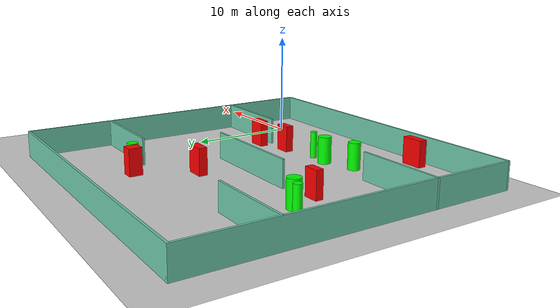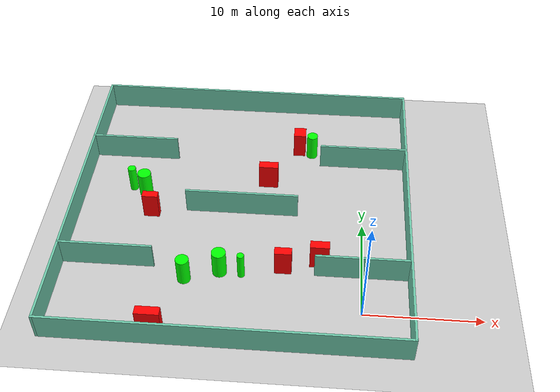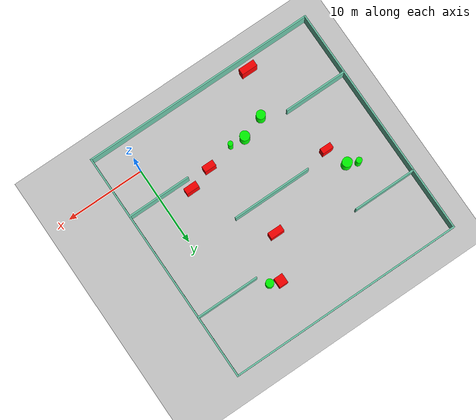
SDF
<sdf version="1.7">
 <world name="default">
  <light name="sun" type="directional">
   <pose>0 0 10 0 -0 0</pose>
   <diffuse>0.8 0.8 0.8 1</diffuse>
   <specular>0.2 0.2 0.2 1</specular>
   <attenuation>
    <range>1000</range>
    <constant>0.9</constant>
    <linear>0.01</linear>
    <quadratic>0.001</quadratic>
   </attenuation>
   <direction>-0.5 0.1 -0.9</direction>
   <spot><inner_angle>0</inner_angle><outer_angle>0</outer_angle><falloff>0</falloff></spot>
  </light>
  <model name="ground_plane">
   <static>1</static>
   <link name="link">
    <collision name="collision">
     <geometry><plane><normal>0 0 1</normal><size>100 100</size></plane></geometry>
     <surface>
      <contact><collide_bitmask>65535</collide_bitmask></contact>
      <friction><ode><mu>100</mu><mu2>50</mu2></ode></friction>
     </surface>
    </collision>
    <visual name="visual">
     <cast_shadows>0</cast_shadows>
     <geometry><plane><normal>0 0 1</normal><size>100 100</size></plane></geometry>
     <material>
      <script><uri>file://media/materials/scripts/gazebo.material</uri><name>Gazebo/Grey</name></script>
     </material>
    </visual>
   </link>
  </model>
  <gravity>0 0 -9.8</gravity>
  <magnetic_field>6e-06 2.3e-05 -4.2e-05</magnetic_field>
  <atmosphere type="adiabatic"/>
  <physics type="ode">
   <max_step_size>0.001</max_step_size>
   <real_time_factor>1</real_time_factor>
   <real_time_update_rate>1000</real_time_update_rate>
  </physics>
  <scene><ambient>0.4 0.4 0.4 1</ambient><background>0.7 0.7 0.7 1</background><shadows>1</shadows></scene>
  <spherical_coordinates>
   <surface_model>EARTH_WGS84</surface_model>
   <latitude_deg>0</latitude_deg>
   <longitude_deg>0</longitude_deg>
   <elevation>0</elevation>
   <heading_deg>0</heading_deg>
  </spherical_coordinates>
  <model name="my_base_walls">
   <link name="Wall_10">
    <collision name="Wall_10_Collision">
     <geometry><box><size>8.2 0.2 2.5</size></box></geometry>
     <pose>0 0 1.25 0 -0 0</pose>
    </collision>
    <visual name="Wall_10_Visual">
     <pose>0 0 1.25 0 -0 0</pose>
     <geometry><box><size>8.2 0.2 2.5</size></box></geometry>
     <material>
      <script><uri>file://media/materials/scripts/gazebo.material</uri><name>Gazebo/Grey</name></script>
      <ambient>0.435294 0.796078 0.67451 1</ambient>
     </material>
     <meta><layer>0</layer></meta>
    </visual>
    <pose>-11 -7 0 0 -0 0</pose>
   </link>
   <link name="Wall_12">
    <collision name="Wall_12_Collision">
     <geometry><box><size>8.2 0.2 2.5</size></box></geometry>
     <pose>0 0 1.25 0 -0 0</pose>
    </collision>
    <visual name="Wall_12_Visual">
     <pose>0 0 1.25 0 -0 0</pose>
     <geometry><box><size>8.2 0.2 2.5</size></box></geometry>
     <material>
      <script><uri>file://media/materials/scripts/gazebo.material</uri><name>Gazebo/Grey</name></script>
      <ambient>0.435294 0.796078 0.67451 1</ambient>
     </material>
     <meta><layer>0</layer></meta>
    </visual>
    <pose>-11 7 0 0 -0 0</pose>
   </link>
   <link name="Wall_14">
    <collision name="Wall_14_Collision">
     <geometry><box><size>8.2 0.2 2.5</size></box></geometry>
     <pose>0 0 1.25 0 -0 0</pose>
    </collision>
    <visual name="Wall_14_Visual">
     <pose>0 0 1.25 0 -0 0</pose>
     <geometry><box><size>8.2 0.2 2.5</size></box></geometry>
     <material>
      <script><uri>file://media/materials/scripts/gazebo.material</uri><name>Gazebo/Grey</name></script>
      <ambient>0.435294 0.796078 0.67451 1</ambient>
     </material>
     <meta><layer>0</layer></meta>
    </visual>
    <pose>11 7 0 0 -0 3.14159</pose>
   </link>
   <link name="Wall_16">
    <collision name="Wall_16_Collision">
     <geometry><box><size>10.2 0.2 2.5</size></box></geometry>
     <pose>0 0 1.25 0 -0 0</pose>
    </collision>
    <visual name="Wall_16_Visual">
     <pose>0 0 1.25 0 -0 0</pose>
     <geometry><box><size>10.2 0.2 2.5</size></box></geometry>
     <material>
      <script><uri>file://media/materials/scripts/gazebo.material</uri><name>Gazebo/Grey</name></script>
      <ambient>0.435294 0.796078 0.67451 1</ambient>
     </material>
     <meta><layer>0</layer></meta>
    </visual>
    <pose>0 0 0 0 -0 3.14159</pose>
   </link>
   <link name="Wall_2">
    <collision name="Wall_2_Collision">
     <geometry><box><size>30.2 0.2 2.5</size></box></geometry>
     <pose>0 0 1.25 0 -0 0</pose>
    </collision>
    <visual name="Wall_2_Visual">
     <pose>0 0 1.25 0 -0 0</pose>
     <geometry><box><size>30.2 0.2 2.5</size></box></geometry>
     <material>
      <script><uri>file://media/materials/scripts/gazebo.material</uri><name>Gazebo/Grey</name></script>
      <ambient>0.435294 0.796078 0.67451 1</ambient>
     </material>
     <meta><layer>0</layer></meta>
    </visual>
    <pose>0 -15 0 0 -0 3.14159</pose>
   </link>
   <link name="Wall_3">
    <collision name="Wall_3_Collision">
     <geometry><box><size>30.2 0.2 2.5</size></box></geometry>
     <pose>0 0 1.25 0 -0 0</pose>
    </collision>
    <visual name="Wall_3_Visual">
     <pose>0 0 1.25 0 -0 0</pose>
     <geometry><box><size>30.2 0.2 2.5</size></box></geometry>
     <material>
      <script><uri>file://media/materials/scripts/gazebo.material</uri><name>Gazebo/Grey</name></script>
      <ambient>0.435294 0.796078 0.67451 1</ambient>
     </material>
     <meta><layer>0</layer></meta>
    </visual>
    <pose>-15 0 0 0 -0 1.5708</pose>
   </link>
   <link name="Wall_4">
    <collision name="Wall_4_Collision">
     <geometry><box><size>30.2 0.2 2.5</size></box></geometry>
     <pose>0 0 1.25 0 -0 0</pose>
    </collision>
    <visual name="Wall_4_Visual">
     <pose>0 0 1.25 0 -0 0</pose>
     <geometry><box><size>30.2 0.2 2.5</size></box></geometry>
     <material>
      <script><uri>file://media/materials/scripts/gazebo.material</uri><name>Gazebo/Grey</name></script>
      <ambient>0.435294 0.796078 0.67451 1</ambient>
     </material>
     <meta><layer>0</layer></meta>
    </visual>
    <pose>0 15 0 0 -0 0</pose>
   </link>
   <link name="Wall_6">
    <collision name="Wall_6_Collision">
     <geometry><box><size>30.2 0.2 2.5</size></box></geometry>
     <pose>0 0 1.25 0 -0 0</pose>
    </collision>
    <visual name="Wall_6_Visual">
     <pose>0 0 1.25 0 -0 0</pose>
     <geometry><box><size>30.2 0.2 2.5</size></box></geometry>
     <material>
      <script><uri>file://media/materials/scripts/gazebo.material</uri><name>Gazebo/Grey</name></script>
      <ambient>0.435294 0.796078 0.67451 1</ambient>
     </material>
     <meta><layer>0</layer></meta>
    </visual>
    <pose>15 0 0 0 -0 1.5708</pose>
   </link>
   <link name="Wall_8">
    <collision name="Wall_8_Collision">
     <geometry><box><size>8.2 0.2 2.5</size></box></geometry>
     <pose>0 0 1.25 0 -0 0</pose>
    </collision>
    <visual name="Wall_8_Visual">
     <pose>0 0 1.25 0 -0 0</pose>
     <geometry><box><size>8.2 0.2 2.5</size></box></geometry>
     <material>
      <script><uri>file://media/materials/scripts/gazebo.material</uri><name>Gazebo/Grey</name></script>
      <ambient>0.435294 0.796078 0.67451 1</ambient>
     </material>
     <meta><layer>0</layer></meta>
    </visual>
    <pose>11 -7 0 0 -0 3.14159</pose>
   </link>
   <static>1</static>
   <pose>-11 11 0 0 -0 0</pose>
  </model>
  <model name="cylinder1">
   <static>1</static>
   <link name="link">
    <inertial>
     <mass>1</mass>
     <inertia><ixx>0.5</ixx><ixy>0</ixy><ixz>0</ixz><iyy>0.5</iyy><iyz>0</iyz><izz>1</izz></inertia>
    </inertial>
    <collision name="collision">
     <geometry><cylinder><radius>0.6181205610210545</radius><length>2.5</length></cylinder></geometry>
    </collision>
    <visual name="visual">
     <geometry><cylinder><radius>0.6181205610210545</radius><length>2.5</length></cylinder></geometry>
     <material>
      <ambient>0 1 0 1</ambient>
      <diffuse>0 1 0 1</diffuse>
      <specular>0.1 0.1 0.1 1</specular>
      <emissive>0 0 0 0</emissive>
     </material>
    </visual>
   </link>
   <pose>-12.188213053792078 3.710607601195469 1.25 0 0 0</pose>
  </model>
  <model name="cylinder2">
   <static>1</static>
   <link name="link">
    <inertial>
     <mass>1</mass>
     <inertia><ixx>0.5</ixx><ixy>0</ixy><ixz>0</ixz><iyy>0.5</iyy><iyz>0</iyz><izz>1</izz></inertia>
    </inertial>
    <collision name="collision">
     <geometry><cylinder><radius>0.3737149077700963</radius><length>2.5</length></cylinder></geometry>
    </collision>
    <visual name="visual">
     <geometry><cylinder><radius>0.3737149077700963</radius><length>2.5</length></cylinder></geometry>
     <material>
      <ambient>0 1 0 1</ambient>
      <diffuse>0 1 0 1</diffuse>
      <specular>0.1 0.1 0.1 1</specular>
      <emissive>0 0 0 0</emissive>
     </material>
    </visual>
   </link>
   <pose>-21.47896339627836 13.519414535897123 1.25 0 0 0</pose>
  </model>
  <model name="cylinder3">
   <static>1</static>
   <link name="link">
    <inertial>
     <mass>1</mass>
     <inertia><ixx>0.5</ixx><ixy>0</ixy><ixz>0</ixz><iyy>0.5</iyy><iyz>0</iyz><izz>1</izz></inertia>
    </inertial>
    <collision name="collision">
     <geometry><cylinder><radius>0.5054031639291345</radius><length>2.5</length></cylinder></geometry>
    </collision>
    <visual name="visual">
     <geometry><cylinder><radius>0.5054031639291345</radius><length>2.5</length></cylinder></geometry>
     <material>
      <ambient>0 1 0 1</ambient>
      <diffuse>0 1 0 1</diffuse>
      <specular>0.1 0.1 0.1 1</specular>
      <emissive>0 0 0 0</emissive>
     </material>
    </visual>
   </link>
   <pose>-4.943305685416485 19.383172539061928 1.25 0 0 0</pose>
  </model>
  <model name="cylinder4">
   <static>1</static>
   <link name="link">
    <inertial>
     <mass>1</mass>
     <inertia><ixx>0.5</ixx><ixy>0</ixy><ixz>0</ixz><iyy>0.5</iyy><iyz>0</iyz><izz>1</izz></inertia>
    </inertial>
    <collision name="collision">
     <geometry><cylinder><radius>0.3097689086669468</radius><length>2.5</length></cylinder></geometry>
    </collision>
    <visual name="visual">
     <geometry><cylinder><radius>0.3097689086669468</radius><length>2.5</length></cylinder></geometry>
     <material>
      <ambient>0 1 0 1</ambient>
      <diffuse>0 1 0 1</diffuse>
      <specular>0.1 0.1 0.1 1</specular>
      <emissive>0 0 0 0</emissive>
     </material>
    </visual>
   </link>
   <pose>-10.316726386732455 3.5234515408037623 1.25 0 0 0</pose>
  </model>
  <model name="cylinder5">
   <static>1</static>
   <link name="link">
    <inertial>
     <mass>1</mass>
     <inertia><ixx>0.5</ixx><ixy>0</ixy><ixz>0</ixz><iyy>0.5</iyy><iyz>0</iyz><izz>1</izz></inertia>
    </inertial>
    <collision name="collision">
     <geometry><cylinder><radius>0.5724118530019877</radius><length>2.5</length></cylinder></geometry>
    </collision>
    <visual name="visual">
     <geometry><cylinder><radius>0.5724118530019877</radius><length>2.5</length></cylinder></geometry>
     <material>
      <ambient>0 1 0 1</ambient>
      <diffuse>0 1 0 1</diffuse>
      <specular>0.1 0.1 0.1 1</specular>
      <emissive>0 0 0 0</emissive>
     </material>
    </visual>
   </link>
   <pose>-15.129825976541552 2.717689951962967 1.25 0 0 0</pose>
  </model>
  <model name="cylinder6">
   <static>1</static>
   <link name="link">
    <inertial>
     <mass>1</mass>
     <inertia><ixx>0.5</ixx><ixy>0</ixy><ixz>0</ixz><iyy>0.5</iyy><iyz>0</iyz><izz>1</izz></inertia>
    </inertial>
    <collision name="collision">
     <geometry><cylinder><radius>0.6176138688258548</radius><length>2.5</length></cylinder></geometry>
    </collision>
    <visual name="visual">
     <geometry><cylinder><radius>0.6176138688258548</radius><length>2.5</length></cylinder></geometry>
     <material>
      <ambient>0 1 0 1</ambient>
      <diffuse>0 1 0 1</diffuse>
      <specular>0.1 0.1 0.1 1</specular>
      <emissive>0 0 0 0</emissive>
     </material>
    </visual>
   </link>
   <pose>-20.218625617688446 12.929754403992803 1.25 0 0 0</pose>
  </model>
  <model name="box1">
   <static>1</static>
   <link name="link">
    <inertial>
     <mass>1</mass>
     <inertia><ixx>0.083</ixx><ixy>0</ixy><ixz>0</ixz><iyy>0.083</iyy><iyz>0</iyz><izz>0.083</izz></inertia>
    </inertial>
    <collision name="collision">
     <geometry><box><size>1.1309177078600259 1.227075436465279 2.5</size></box></geometry>
    </collision>
    <visual name="visual">
     <geometry><box><size>1.1309177078600259 1.227075436465279 2.5</size></box></geometry>
     <material>
      <ambient>1 0 0 1</ambient>
      <diffuse>1 0 0 1</diffuse>
      <specular>0.1 0.1 0.1 1</specular>
      <emissive>0 0 0 0</emissive>
     </material>
    </visual>
    <sensor name="my_contact" type="contact">
     <contact><collision>box_collision</collision><topic>__default_topic__</topic></contact>
    </sensor>
   </link>
   <pose>-6.165729432292158 19.866093058334048 1.25 0 0 0</pose>
  </model>
  <model name="box2">
   <static>1</static>
   <link name="link">
    <inertial>
     <mass>1</mass>
     <inertia><ixx>0.083</ixx><ixy>0</ixy><ixz>0</ixz><iyy>0.083</iyy><iyz>0</iyz><izz>0.083</izz></inertia>
    </inertial>
    <collision name="collision">
     <geometry><box><size>1.767022162254377 0.8052555016172229 2.5</size></box></geometry>
    </collision>
    <visual name="visual">
     <geometry><box><size>1.767022162254377 0.8052555016172229 2.5</size></box></geometry>
     <material>
      <ambient>1 0 0 1</ambient>
      <diffuse>1 0 0 1</diffuse>
      <specular>0.1 0.1 0.1 1</specular>
      <emissive>0 0 0 0</emissive>
     </material>
    </visual>
    <sensor name="my_contact" type="contact">
     <contact><collision>box_collision</collision><topic>__default_topic__</topic></contact>
    </sensor>
   </link>
   <pose>-8.850847306796016 14.942830501341916 1.25 0 0 0</pose>
  </model>
  <model name="box3">
   <static>1</static>
   <link name="link">
    <inertial>
     <mass>1</mass>
     <inertia><ixx>0.083</ixx><ixy>0</ixy><ixz>0</ixz><iyy>0.083</iyy><iyz>0</iyz><izz>0.083</izz></inertia>
    </inertial>
    <collision name="collision">
     <geometry><box><size>2.0326038974988645 0.8026767585937467 2.5</size></box></geometry>
    </collision>
    <visual name="visual">
     <geometry><box><size>2.0326038974988645 0.8026767585937467 2.5</size></box></geometry>
     <material>
      <ambient>1 0 0 1</ambient>
      <diffuse>1 0 0 1</diffuse>
      <specular>0.1 0.1 0.1 1</specular>
      <emissive>0 0 0 0</emissive>
     </material>
    </visual>
    <sensor name="my_contact" type="contact">
     <contact><collision>box_collision</collision><topic>__default_topic__</topic></contact>
    </sensor>
   </link>
   <pose>-17.059691538905767 -2.746629542828846 1.25 0 0 0</pose>
  </model>
  <model name="box4">
   <static>1</static>
   <link name="link">
    <inertial>
     <mass>1</mass>
     <inertia><ixx>0.083</ixx><ixy>0</ixy><ixz>0</ixz><iyy>0.083</iyy><iyz>0</iyz><izz>0.083</izz></inertia>
    </inertial>
    <collision name="collision">
     <geometry><box><size>1.410600373293707 0.7076489831841903 2.5</size></box></geometry>
    </collision>
    <visual name="visual">
     <geometry><box><size>1.410600373293707 0.7076489831841903 2.5</size></box></geometry>
     <material>
      <ambient>1 0 0 1</ambient>
      <diffuse>1 0 0 1</diffuse>
      <specular>0.1 0.1 0.1 1</specular>
      <emissive>0 0 0 0</emissive>
     </material>
    </visual>
    <sensor name="my_contact" type="contact">
     <contact><collision>box_collision</collision><topic>__default_topic__</topic></contact>
    </sensor>
   </link>
   <pose>-19.187548789725113 10.252580816513856 1.25 0 0 0</pose>
  </model>
  <model name="box5">
   <static>1</static>
   <link name="link">
    <inertial>
     <mass>1</mass>
     <inertia><ixx>0.083</ixx><ixy>0</ixy><ixz>0</ixz><iyy>0.083</iyy><iyz>0</iyz><izz>0.083</izz></inertia>
    </inertial>
    <collision name="collision">
     <geometry><box><size>1.4840572356462913 0.7693018492702117 2.5</size></box></geometry>
    </collision>
    <visual name="visual">
     <geometry><box><size>1.4840572356462913 0.7693018492702117 2.5</size></box></geometry>
     <material>
      <ambient>1 0 0 1</ambient>
      <diffuse>1 0 0 1</diffuse>
      <specular>0.1 0.1 0.1 1</specular>
      <emissive>0 0 0 0</emissive>
     </material>
    </visual>
    <sensor name="my_contact" type="contact">
     <contact><collision>box_collision</collision><topic>__default_topic__</topic></contact>
    </sensor>
   </link>
   <pose>-6.786419406543271 4.297129132430994 1.25 0 0 0</pose>
  </model>
  <model name="box6">
   <static>1</static>
   <link name="link">
    <inertial>
     <mass>1</mass>
     <inertia><ixx>0.083</ixx><ixy>0</ixy><ixz>0</ixz><iyy>0.083</iyy><iyz>0</iyz><izz>0.083</izz></inertia>
    </inertial>
    <collision name="collision">
     <geometry><box><size>1.6659746470918013 0.7825574705555332 2.5</size></box></geometry>
    </collision>
    <visual name="visual">
     <geometry><box><size>1.6659746470918013 0.7825574705555332 2.5</size></box></geometry>
     <material>
      <ambient>1 0 0 1</ambient>
      <diffuse>1 0 0 1</diffuse>
      <specular>0.1 0.1 0.1 1</specular>
      <emissive>0 0 0 0</emissive>
     </material>
    </visual>
    <sensor name="my_contact" type="contact">
     <contact><collision>box_collision</collision><topic>__default_topic__</topic></contact>
    </sensor>
   </link>
   <pose>-3.7059372575504526 5.237802970830456 1.25 0 0 0</pose>
  </model>
 </world>
</sdf>
